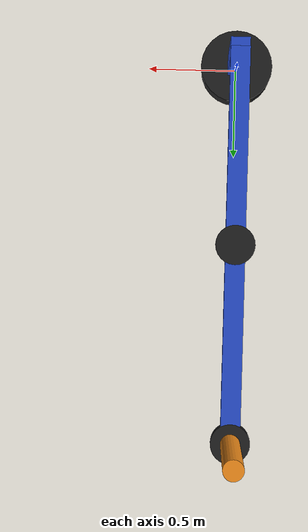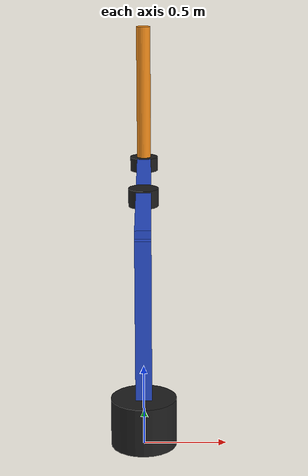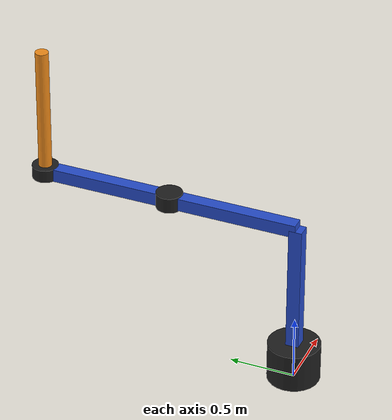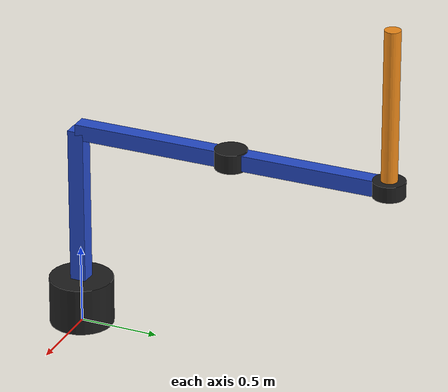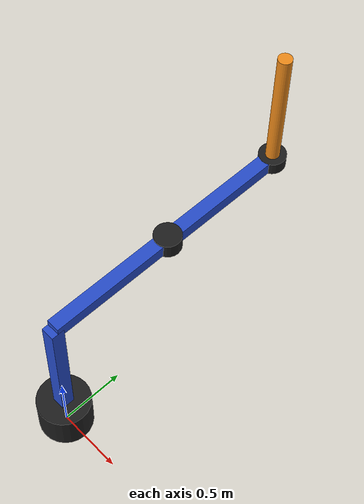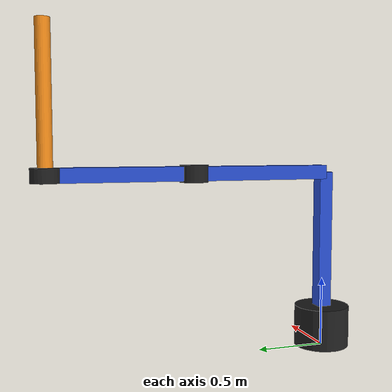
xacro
<?xml version="0.0"?>
<robot name="scara_robot" xmlns:xacro="http://www.ros.org/wiki/xacro">

    <!-- Constants for robot dimensions -->
    <xacro:property name="PI" value="3.1415926535897931"/>
    <xacro:property name="mass" value="1" /> <!-- arbitrary value for mass -->
    <xacro:property name="width" value="0.1" /> <!-- Square dimensions (widthxwidth) of beams -->
    <xacro:property name="radius0" value="0.2" /> <!-- Base radius -->
    <xacro:property name="height0" value="0.3" /> <!-- Base height -->
    <xacro:property name="a0" value="1" /> <!-- Link 1 Vertical -->
    <xacro:property name="a1" value="1" /> <!-- Link 1 Horizontal -->
    <xacro:property name="height1" value="0.12" /> <!-- Cylinder Height-->
    <xacro:property name="a2" value="1" /> <!-- Link 2 -->
    <xacro:property name="a3" value="1" /> <!-- Link 3 -->
    <xacro:property name="radius1" value="0.1" /> <!-- Radius of Joint Cylinder -->

    <xacro:include filename="$(find scara_robot)/urdf/robot.gazebo" />

    <link name="world"/>

    <joint name="fixed1" type="fixed">
        <parent link="world"/>
        <child link="base"/>
        <origin xyz="0 0 0" rpy="0 0 0"/>
    </joint>

    <!-- Base Link -->
    <link name="base">
        <collision>
            <origin xyz="0 0 ${height0/2}" rpy="0 0 0"/>
            <geometry>
                <cylinder length = "${height0}" radius = "${radius0}"/>
            </geometry>
        </collision>
        <visual>
            <origin xyz="0 0 ${height0/2}" rpy="0 0 0"/>
            <geometry>
                <cylinder length = "${height0}" radius = "${radius0}"/>
            </geometry>
        </visual>
        <inertial>
            <origin xyz="0 0 ${height0/2}" rpy="0 0 0"/>
            <mass value="10"/>
            <inertia ixx="0.31" ixy="0.0" ixz="0.0" iyy="0.31" iyz="0.0" izz="0.2"/>
        </inertial>
    </link>

    <joint name="joint1" type="continuous">
        <parent link="base"/>
        <child link="link1"/>
        <origin xyz="0 0 ${height0}" rpy="0 0 0"/>
        <axis xyz="0 0 1"/>
        <dynamics damping="0.7"/>
        <limit effort="1000" velocity="2"/>
    </joint>

    <link name="link1">
        <collision>
            <origin xyz="0 0 ${a0/2}" rpy="0 0 0"/>
            <geometry>
                <box size="${width} ${width} ${a0}"/>
            </geometry>
        </collision>

        <visual>
            <origin xyz="0 0 ${a0/2}" rpy="0 0 0"/>
            <geometry>
                <box size="${width} ${width} ${a0}"/>
            </geometry>
        </visual>

        <inertial>
            <origin xyz="0 0 ${a0/2}" rpy="0 0 0"/>
            <mass value="${mass}"/>
            <inertia
                ixx="${mass / 12.0 * (width*width + a0*a0)}" ixy="0.0" ixz="0.0"
                iyy="${mass / 12.0 * (width*width + width*width)}" iyz="0.0"
                izz="${mass / 12.0 * (width*width + a0*a0)}"/>
        </inertial>
    </link>

    <joint name="fixed2" type="fixed">
        <parent link="link1"/>
        <child link="link1_h"/>
        <origin xyz="0 0 ${a0}" rpy="0 0 0"/>
    </joint>

    <link name="link1_h">
        <collision>
            <origin xyz="0 ${a1/2} 0" rpy="1.57 0 0"/>
            <geometry>
                <box size="${width} ${width} ${a1}"/>
            </geometry>
        </collision>

        <visual>
            <origin xyz="0 ${a1/2} 0" rpy="1.57 0 0"/>
            <geometry>
                <box size="${width} ${width} ${a1}"/>
            </geometry>
        </visual>

        <inertial>
            <origin xyz="0 ${a1/2} 0" rpy="1.57 0 0"/>
            <mass value="${mass}"/>
            <inertia
                ixx="${mass / 12.0 * (width*width + a1*a1)}" ixy="0.0" ixz="0.0"
                iyy="${mass / 12.0 * (width*width + width*width)}" iyz="0.0"
                izz="${mass / 12.0 * (width*width + a1*a1)}"/>
        </inertial>
    </link>

    <joint name="cyl_joint1" type="fixed">
        <parent link="link1_h"/>
        <child link="cyl1"/>
        <origin xyz="0 ${a1} 0" rpy="0 0 0"/>
    </joint>

    <!-- Base Link -->
    <link name="cyl1">
        <collision>
            <origin xyz="0 0 0" rpy="0 0 0"/>
            <geometry>
                <cylinder length = "${height1}" radius = "${radius1}"/>
            </geometry>
        </collision>
        <visual>
            <origin xyz="0 0 0" rpy="0 0 0"/>
            <geometry>
                <cylinder length = "${height1}" radius = "${radius1}"/>
            </geometry>
        </visual>
        <inertial>
            <origin xyz="0 0 0" rpy="0 0 0"/>
            <mass value="2"/>
            <inertia ixx="0.31" ixy="0.0" ixz="0.0" iyy="0.31" iyz="0.0" izz="0.2"/>
        </inertial>
    </link>

    <joint name="joint2" type="continuous">
        <parent link="cyl1"/>
        <child link="link2"/>
        <origin xyz="0 0 0" rpy="0 0 0"/>
        <axis xyz="0 0 1"/>
        <dynamics damping="0.7"/>
        <limit effort="1000" velocity="2"/>
    </joint>

    <link name="link2">
        <collision>
            <origin xyz="0 ${a2/2} 0" rpy="1.57 0 0"/>
            <geometry>
                <box size="${width} ${width} ${a2}"/>
            </geometry>
        </collision>

        <visual>
            <origin xyz="0 ${a2/2} 0" rpy="1.57 0 0"/>
            <geometry>
                <box size="${width} ${width} ${a2}"/>
            </geometry>
        </visual>

        <inertial>
            <origin xyz="0 ${a2/2} 0" rpy="1.57 0 0"/>
            <mass value="${mass}"/>
            <inertia
                ixx="${mass / 12.0 * (width*width + a2*a2)}" ixy="0.0" ixz="0.0"
                iyy="${mass / 12.0 * (width*width + width*width)}" iyz="0.0"
                izz="${mass / 12.0 * (width*width + a2*a2)}"/>
        </inertial>
    </link>

    <joint name="cyl_joint2" type="fixed">
        <parent link="link2"/>
        <child link="cyl2"/>
        <origin xyz="0 ${a2} 0" rpy="0 0 0"/>
    </joint>

    <link name="cyl2">
        <collision>
            <origin xyz="0 0 0" rpy="0 0 0"/>
            <geometry>
                <cylinder length = "${width}" radius = "${radius1}"/>
            </geometry>
        </collision>
        <visual>
            <origin xyz="0 0 0" rpy="0 0 0"/>
            <geometry>
                <cylinder length = "${width}" radius = "${radius1}"/>
            </geometry>
        </visual>
        <inertial>
            <origin xyz="0 0 0" rpy="0 0 0"/>
            <mass value="2"/>
            <inertia ixx="0.31" ixy="0.0" ixz="0.0" iyy="0.31" iyz="0.0" izz="0.2"/>
        </inertial>
    </link>

    <joint name="joint3" type="prismatic">
        <parent link="cyl2"/>
        <child link="link3"/>
        <origin xyz="0 0 0" rpy="0 0 0"/>
        <axis xyz="0 0 -1"/>
        <limit effort="1000" lower="0" upper="1" velocity="2"/>
    </joint>

    <link name="link3">
        <collision>
            <origin xyz="0 0 ${a3/2}" rpy="0 0 0"/>
            <geometry>
                <cylinder length = "${a3}" radius = "${radius1/2}"/>
            </geometry>
        </collision>
        <visual>
            <origin xyz="0 0 ${a3/2}" rpy="0 0 0"/>
            <geometry>
                <cylinder length = "${a3}" radius = "${radius1/2}"/>
            </geometry>
        </visual>
        <inertial>
            <origin xyz="0 0 ${a3/2}" rpy="0 0 0"/>
            <mass value="0.1"/>
            <inertia
			  ixx="${0.1/12*(3*radius1/2*radius1/2 + a3*a3)}" ixy="0.0" ixz="0.0"
			  iyy="${0.1/12*(3*radius1/2*radius1/2 + a3*a3)}" iyz="0.0"
			  izz="${0.1/2*(radius1/2*radius1/2)}"/>
        </inertial>
    </link>

    <transmission name="tran1">
        <type>transmission_interface/SimpleTransmission</type>
        <joint name="joint1">
            <hardwareInterface>hardware_interface/EffortJointInterface</hardwareInterface>
        </joint>
        <actuator name="motor1">
            <hardwareInterface>hardware_interface/EffortJointInterface</hardwareInterface>
            <mechanicalReduction>1</mechanicalReduction>
        </actuator>
    </transmission>

    <transmission name="tran2">
        <type>transmission_interface/SimpleTransmission</type>
        <joint name="joint2">
            <hardwareInterface>hardware_interface/EffortJointInterface</hardwareInterface>
        </joint>
        <actuator name="motor2">
            <hardwareInterface>hardware_interface/EffortJointInterface</hardwareInterface>
            <mechanicalReduction>1</mechanicalReduction>
        </actuator>
    </transmission>

    <transmission name="tran3">
        <type>transmission_interface/SimpleTransmission</type>
        <joint name="joint3">
            <hardwareInterface>hardware_interface/EffortJointInterface</hardwareInterface>
        </joint>
        <actuator name="motor3">
            <hardwareInterface>hardware_interface/EffortJointInterface</hardwareInterface>
            <mechanicalReduction>1</mechanicalReduction>
        </actuator>
    </transmission>
</robot>
